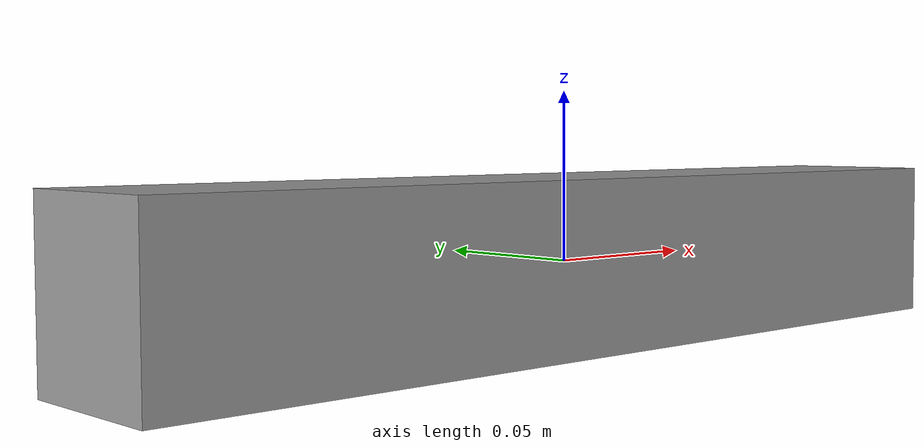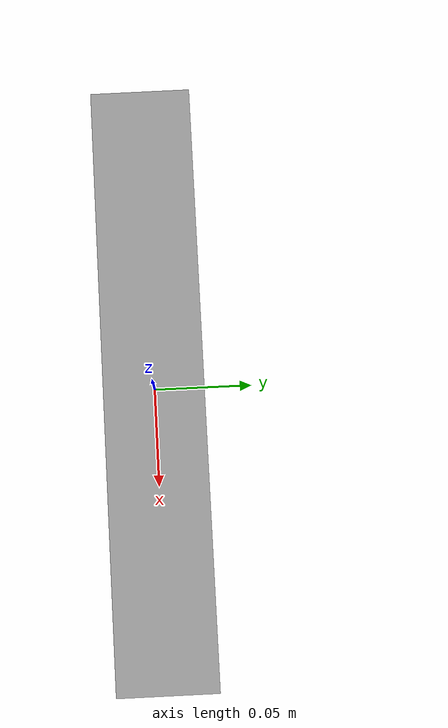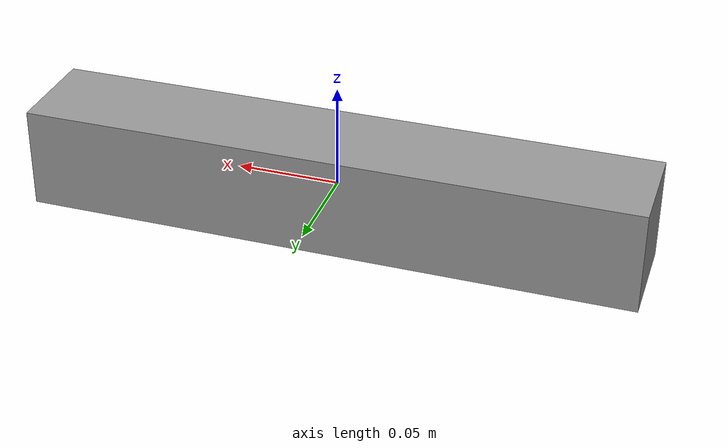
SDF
<?xml version='1.0'?>
<sdf version='1.5'>

  <model name='torpedo'>
    <pose>0 0 0 0 0 0</pose>
    <self_collide> 0 </self_collide>

    <link name='torpedo'>
      <pose> 0 0 0 0 0 0</pose>
     <inertial>
        <mass>0.03</mass>
        </inertial>
      <visual name='torpedo_vis'>
        <geometry>
          <box><size>0.3 0.05 0.05</size></box>
        </geometry>
        <material>
          <script>
            <uri>file://media/materials/scripts/gazebo.material</uri>
            <name>Gazebo/Grey</name>
          </script>
        </material>
      </visual>
      <collision name='torpedo_collision'>
        <geometry>
          <sphere><radius>0.02</radius></sphere>
        </geometry>
      </collision>
    </link>
    <plugin name="buoyancy_improved" filename="libbuoyancy_improved.so">
      <fluid_density>1000</fluid_density>
      <link name="torpedo">
        <volume>0.00003351</volume>
      </link>
    </plugin>

  </model>
</sdf>
